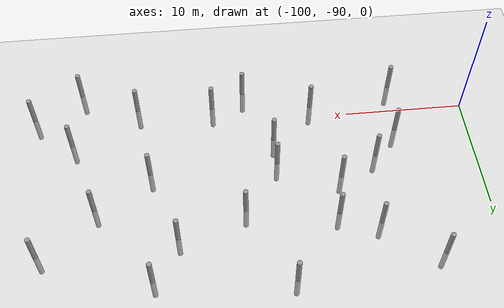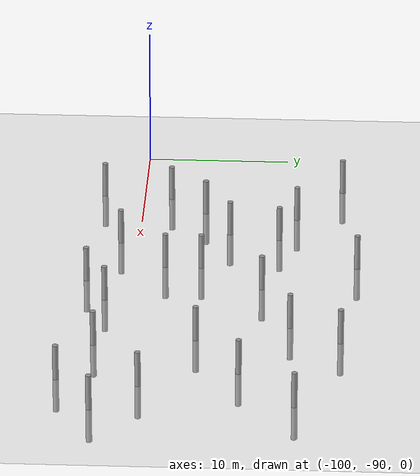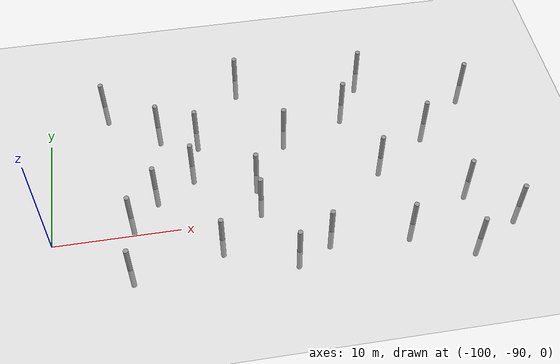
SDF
<sdf version="1.6">
 <world name="default">
  <model name="ground_plane">
   <static>1</static>
   <link name="link">
    <collision name="collision">
     <geometry><plane><normal>0 0 1</normal><size>100 100</size></plane></geometry>
     <surface><friction><ode><mu>100</mu><mu2>50</mu2></ode></friction></surface>
    </collision>
    <visual name="visual">
     <cast_shadows>0</cast_shadows>
     <geometry><plane><normal>0 0 1</normal><size>100 100</size></plane></geometry>
     <material>
      <script><uri>file://media/materials/scripts/gazebo.material</uri><name>Gazebo/Grey</name></script>
     </material>
    </visual>
   </link>
  </model>
  <model name="empty_pillars_11">
   <model name="empty_pillar_clone">
    <link name="link">
     <inertial>
      <mass>1</mass>
      <inertia><ixx>0.145833</ixx><ixy>0</ixy><ixz>0</ixz><iyy>0.145833</iyy><iyz>0</iyz><izz>0.125</izz></inertia>
     </inertial>
     <visual name="visual">
      <geometry><cylinder><radius>0.2</radius><length>5</length></cylinder></geometry>
      <material>
       <script><name>Gazebo/Grey</name><uri>file://media/materials/scripts/gazebo.material</uri></script>
       <shader type="vertex"><normal_map>__default__</normal_map></shader>
       <ambient>0.3 0.3 0.3 1</ambient>
       <diffuse>0.7 0.7 0.7 1</diffuse>
       <specular>0.01 0.01 0.01 1</specular>
       <emissive>0 0 0 1</emissive>
      </material>
     </visual>
     <collision name="collision">
      <geometry><cylinder><radius>0.05</radius><length>5</length></cylinder></geometry>
      <surface>
       <friction>
        <ode><mu>1</mu><mu2>1</mu2><fdir1>0 0 0</fdir1><slip1>0</slip1><slip2>0</slip2></ode>
        <torsional>
         <coefficient>1</coefficient>
         <patch_radius>0</patch_radius>
         <surface_radius>0</surface_radius>
         <use_patch_radius>1</use_patch_radius>
         <ode><slip>0</slip></ode>
        </torsional>
       </friction>
       <bounce><restitution_coefficient>0</restitution_coefficient><threshold>1e+06</threshold></bounce>
       <contact>
        <collide_without_contact>0</collide_without_contact>
        <collide_without_contact_bitmask>1</collide_without_contact_bitmask>
        <collide_bitmask>1</collide_bitmask>
        <ode>
         <soft_cfm>0</soft_cfm>
         <soft_erp>0.2</soft_erp>
         <kp>1e+13</kp>
         <kd>1</kd>
         <max_vel>0.01</max_vel>
         <min_depth>0</min_depth>
        </ode>
        <bullet>
         <split_impulse>1</split_impulse>
         <split_impulse_penetration_threshold>-0.01</split_impulse_penetration_threshold>
         <soft_cfm>0</soft_cfm>
         <soft_erp>0.2</soft_erp>
         <kp>1e+13</kp>
         <kd>1</kd>
        </bullet>
       </contact>
      </surface>
     </collision>
    </link>
    <static>0</static>
    <pose>1.47843 -4.49529 0 0 -0 0</pose>
   </model>
   <model name="empty_pillar_clone_0">
    <link name="link">
     <inertial>
      <mass>1</mass>
      <inertia><ixx>0.145833</ixx><ixy>0</ixy><ixz>0</ixz><iyy>0.145833</iyy><iyz>0</iyz><izz>0.125</izz></inertia>
     </inertial>
     <visual name="visual">
      <geometry><cylinder><radius>0.2</radius><length>5</length></cylinder></geometry>
      <material>
       <script><name>Gazebo/Grey</name><uri>file://media/materials/scripts/gazebo.material</uri></script>
       <shader type="vertex"><normal_map>__default__</normal_map></shader>
       <ambient>0.3 0.3 0.3 1</ambient>
       <diffuse>0.7 0.7 0.7 1</diffuse>
       <specular>0.01 0.01 0.01 1</specular>
       <emissive>0 0 0 1</emissive>
      </material>
     </visual>
     <collision name="collision">
      <geometry><cylinder><radius>0.05</radius><length>5</length></cylinder></geometry>
      <surface>
       <friction>
        <ode><mu>1</mu><mu2>1</mu2><fdir1>0 0 0</fdir1><slip1>0</slip1><slip2>0</slip2></ode>
        <torsional>
         <coefficient>1</coefficient>
         <patch_radius>0</patch_radius>
         <surface_radius>0</surface_radius>
         <use_patch_radius>1</use_patch_radius>
         <ode><slip>0</slip></ode>
        </torsional>
       </friction>
       <bounce><restitution_coefficient>0</restitution_coefficient><threshold>1e+06</threshold></bounce>
       <contact>
        <collide_without_contact>0</collide_without_contact>
        <collide_without_contact_bitmask>1</collide_without_contact_bitmask>
        <collide_bitmask>1</collide_bitmask>
        <ode>
         <soft_cfm>0</soft_cfm>
         <soft_erp>0.2</soft_erp>
         <kp>1e+13</kp>
         <kd>1</kd>
         <max_vel>0.01</max_vel>
         <min_depth>0</min_depth>
        </ode>
        <bullet>
         <split_impulse>1</split_impulse>
         <split_impulse_penetration_threshold>-0.01</split_impulse_penetration_threshold>
         <soft_cfm>0</soft_cfm>
         <soft_erp>0.2</soft_erp>
         <kp>1e+13</kp>
         <kd>1</kd>
        </bullet>
       </contact>
      </surface>
     </collision>
    </link>
    <static>0</static>
    <pose>10.3453 -7.35986 0 0 -0 0</pose>
   </model>
   <model name="empty_pillar_clone_11">
    <link name="link">
     <inertial>
      <mass>1</mass>
      <inertia><ixx>0.145833</ixx><ixy>0</ixy><ixz>0</ixz><iyy>0.145833</iyy><iyz>0</iyz><izz>0.125</izz></inertia>
     </inertial>
     <visual name="visual">
      <geometry><cylinder><radius>0.2</radius><length>5</length></cylinder></geometry>
      <material>
       <script><name>Gazebo/Grey</name><uri>file://media/materials/scripts/gazebo.material</uri></script>
       <shader type="vertex"><normal_map>__default__</normal_map></shader>
       <ambient>0.3 0.3 0.3 1</ambient>
       <diffuse>0.7 0.7 0.7 1</diffuse>
       <specular>0.01 0.01 0.01 1</specular>
       <emissive>0 0 0 1</emissive>
      </material>
     </visual>
     <collision name="collision">
      <geometry><cylinder><radius>0.05</radius><length>5</length></cylinder></geometry>
      <surface>
       <friction>
        <ode><mu>1</mu><mu2>1</mu2><fdir1>0 0 0</fdir1><slip1>0</slip1><slip2>0</slip2></ode>
        <torsional>
         <coefficient>1</coefficient>
         <patch_radius>0</patch_radius>
         <surface_radius>0</surface_radius>
         <use_patch_radius>1</use_patch_radius>
         <ode><slip>0</slip></ode>
        </torsional>
       </friction>
       <bounce><restitution_coefficient>0</restitution_coefficient><threshold>1e+06</threshold></bounce>
       <contact>
        <collide_without_contact>0</collide_without_contact>
        <collide_without_contact_bitmask>1</collide_without_contact_bitmask>
        <collide_bitmask>1</collide_bitmask>
        <ode>
         <soft_cfm>0</soft_cfm>
         <soft_erp>0.2</soft_erp>
         <kp>1e+13</kp>
         <kd>1</kd>
         <max_vel>0.01</max_vel>
         <min_depth>0</min_depth>
        </ode>
        <bullet>
         <split_impulse>1</split_impulse>
         <split_impulse_penetration_threshold>-0.01</split_impulse_penetration_threshold>
         <soft_cfm>0</soft_cfm>
         <soft_erp>0.2</soft_erp>
         <kp>1e+13</kp>
         <kd>1</kd>
        </bullet>
       </contact>
      </surface>
     </collision>
    </link>
    <static>0</static>
    <pose>7.98536 -17.8403 0 0 -0 0</pose>
   </model>
   <model name="empty_pillar_clone_12">
    <link name="link">
     <inertial>
      <mass>1</mass>
      <inertia><ixx>0.145833</ixx><ixy>0</ixy><ixz>0</ixz><iyy>0.145833</iyy><iyz>0</iyz><izz>0.125</izz></inertia>
     </inertial>
     <visual name="visual">
      <geometry><cylinder><radius>0.2</radius><length>5</length></cylinder></geometry>
      <material>
       <script><name>Gazebo/Grey</name><uri>file://media/materials/scripts/gazebo.material</uri></script>
       <shader type="vertex"><normal_map>__default__</normal_map></shader>
       <ambient>0.3 0.3 0.3 1</ambient>
       <diffuse>0.7 0.7 0.7 1</diffuse>
       <specular>0.01 0.01 0.01 1</specular>
       <emissive>0 0 0 1</emissive>
      </material>
     </visual>
     <collision name="collision">
      <geometry><cylinder><radius>0.05</radius><length>5</length></cylinder></geometry>
      <surface>
       <friction>
        <ode><mu>1</mu><mu2>1</mu2><fdir1>0 0 0</fdir1><slip1>0</slip1><slip2>0</slip2></ode>
        <torsional>
         <coefficient>1</coefficient>
         <patch_radius>0</patch_radius>
         <surface_radius>0</surface_radius>
         <use_patch_radius>1</use_patch_radius>
         <ode><slip>0</slip></ode>
        </torsional>
       </friction>
       <bounce><restitution_coefficient>0</restitution_coefficient><threshold>1e+06</threshold></bounce>
       <contact>
        <collide_without_contact>0</collide_without_contact>
        <collide_without_contact_bitmask>1</collide_without_contact_bitmask>
        <collide_bitmask>1</collide_bitmask>
        <ode>
         <soft_cfm>0</soft_cfm>
         <soft_erp>0.2</soft_erp>
         <kp>1e+13</kp>
         <kd>1</kd>
         <max_vel>0.01</max_vel>
         <min_depth>0</min_depth>
        </ode>
        <bullet>
         <split_impulse>1</split_impulse>
         <split_impulse_penetration_threshold>-0.01</split_impulse_penetration_threshold>
         <soft_cfm>0</soft_cfm>
         <soft_erp>0.2</soft_erp>
         <kp>1e+13</kp>
         <kd>1</kd>
        </bullet>
       </contact>
      </surface>
     </collision>
    </link>
    <static>0</static>
    <pose>-4.01464 -20.8403 0 0 -0 0</pose>
   </model>
   <model name="empty_pillar_clone_13">
    <link name="link">
     <inertial>
      <mass>1</mass>
      <inertia><ixx>0.145833</ixx><ixy>0</ixy><ixz>0</ixz><iyy>0.145833</iyy><iyz>0</iyz><izz>0.125</izz></inertia>
     </inertial>
     <visual name="visual">
      <geometry><cylinder><radius>0.2</radius><length>5</length></cylinder></geometry>
      <material>
       <script><name>Gazebo/Grey</name><uri>file://media/materials/scripts/gazebo.material</uri></script>
       <shader type="vertex"><normal_map>__default__</normal_map></shader>
       <ambient>0.3 0.3 0.3 1</ambient>
       <diffuse>0.7 0.7 0.7 1</diffuse>
       <specular>0.01 0.01 0.01 1</specular>
       <emissive>0 0 0 1</emissive>
      </material>
     </visual>
     <collision name="collision">
      <geometry><cylinder><radius>0.05</radius><length>5</length></cylinder></geometry>
      <surface>
       <friction>
        <ode><mu>1</mu><mu2>1</mu2><fdir1>0 0 0</fdir1><slip1>0</slip1><slip2>0</slip2></ode>
        <torsional>
         <coefficient>1</coefficient>
         <patch_radius>0</patch_radius>
         <surface_radius>0</surface_radius>
         <use_patch_radius>1</use_patch_radius>
         <ode><slip>0</slip></ode>
        </torsional>
       </friction>
       <bounce><restitution_coefficient>0</restitution_coefficient><threshold>1e+06</threshold></bounce>
       <contact>
        <collide_without_contact>0</collide_without_contact>
        <collide_without_contact_bitmask>1</collide_without_contact_bitmask>
        <collide_bitmask>1</collide_bitmask>
        <ode>
         <soft_cfm>0</soft_cfm>
         <soft_erp>0.2</soft_erp>
         <kp>1e+13</kp>
         <kd>1</kd>
         <max_vel>0.01</max_vel>
         <min_depth>0</min_depth>
        </ode>
        <bullet>
         <split_impulse>1</split_impulse>
         <split_impulse_penetration_threshold>-0.01</split_impulse_penetration_threshold>
         <soft_cfm>0</soft_cfm>
         <soft_erp>0.2</soft_erp>
         <kp>1e+13</kp>
         <kd>1</kd>
        </bullet>
       </contact>
      </surface>
     </collision>
    </link>
    <static>0</static>
    <pose>-9.01464 -14.4259 0 0 -0 0</pose>
   </model>
   <model name="empty_pillar_clone_15">
    <link name="link">
     <inertial>
      <mass>1</mass>
      <inertia><ixx>0.145833</ixx><ixy>0</ixy><ixz>0</ixz><iyy>0.145833</iyy><iyz>0</iyz><izz>0.125</izz></inertia>
     </inertial>
     <visual name="visual">
      <geometry><cylinder><radius>0.2</radius><length>5</length></cylinder></geometry>
      <material>
       <script><name>Gazebo/Grey</name><uri>file://media/materials/scripts/gazebo.material</uri></script>
       <shader type="vertex"><normal_map>__default__</normal_map></shader>
       <ambient>0.3 0.3 0.3 1</ambient>
       <diffuse>0.7 0.7 0.7 1</diffuse>
       <specular>0.01 0.01 0.01 1</specular>
       <emissive>0 0 0 1</emissive>
      </material>
     </visual>
     <collision name="collision">
      <geometry><cylinder><radius>0.05</radius><length>5</length></cylinder></geometry>
      <surface>
       <friction>
        <ode><mu>1</mu><mu2>1</mu2><fdir1>0 0 0</fdir1><slip1>0</slip1><slip2>0</slip2></ode>
        <torsional>
         <coefficient>1</coefficient>
         <patch_radius>0</patch_radius>
         <surface_radius>0</surface_radius>
         <use_patch_radius>1</use_patch_radius>
         <ode><slip>0</slip></ode>
        </torsional>
       </friction>
       <bounce><restitution_coefficient>0</restitution_coefficient><threshold>1e+06</threshold></bounce>
       <contact>
        <collide_without_contact>0</collide_without_contact>
        <collide_without_contact_bitmask>1</collide_without_contact_bitmask>
        <collide_bitmask>1</collide_bitmask>
        <ode>
         <soft_cfm>0</soft_cfm>
         <soft_erp>0.2</soft_erp>
         <kp>1e+13</kp>
         <kd>1</kd>
         <max_vel>0.01</max_vel>
         <min_depth>0</min_depth>
        </ode>
        <bullet>
         <split_impulse>1</split_impulse>
         <split_impulse_penetration_threshold>-0.01</split_impulse_penetration_threshold>
         <soft_cfm>0</soft_cfm>
         <soft_erp>0.2</soft_erp>
         <kp>1e+13</kp>
         <kd>1</kd>
        </bullet>
       </contact>
      </surface>
     </collision>
    </link>
    <static>0</static>
    <pose>-9.37193 -3.58732 0 0 -0 0</pose>
   </model>
   <model name="empty_pillar_clone_3">
    <link name="link">
     <inertial>
      <mass>1</mass>
      <inertia><ixx>0.145833</ixx><ixy>0</ixy><ixz>0</ixz><iyy>0.145833</iyy><iyz>0</iyz><izz>0.125</izz></inertia>
     </inertial>
     <visual name="visual">
      <geometry><cylinder><radius>0.2</radius><length>5</length></cylinder></geometry>
      <material>
       <script><name>Gazebo/Grey</name><uri>file://media/materials/scripts/gazebo.material</uri></script>
       <shader type="vertex"><normal_map>__default__</normal_map></shader>
       <ambient>0.3 0.3 0.3 1</ambient>
       <diffuse>0.7 0.7 0.7 1</diffuse>
       <specular>0.01 0.01 0.01 1</specular>
       <emissive>0 0 0 1</emissive>
      </material>
     </visual>
     <collision name="collision">
      <geometry><cylinder><radius>0.05</radius><length>5</length></cylinder></geometry>
      <surface>
       <friction>
        <ode><mu>1</mu><mu2>1</mu2><fdir1>0 0 0</fdir1><slip1>0</slip1><slip2>0</slip2></ode>
        <torsional>
         <coefficient>1</coefficient>
         <patch_radius>0</patch_radius>
         <surface_radius>0</surface_radius>
         <use_patch_radius>1</use_patch_radius>
         <ode><slip>0</slip></ode>
        </torsional>
       </friction>
       <bounce><restitution_coefficient>0</restitution_coefficient><threshold>1e+06</threshold></bounce>
       <contact>
        <collide_without_contact>0</collide_without_contact>
        <collide_without_contact_bitmask>1</collide_without_contact_bitmask>
        <collide_bitmask>1</collide_bitmask>
        <ode>
         <soft_cfm>0</soft_cfm>
         <soft_erp>0.2</soft_erp>
         <kp>1e+13</kp>
         <kd>1</kd>
         <max_vel>0.01</max_vel>
         <min_depth>0</min_depth>
        </ode>
        <bullet>
         <split_impulse>1</split_impulse>
         <split_impulse_penetration_threshold>-0.01</split_impulse_penetration_threshold>
         <soft_cfm>0</soft_cfm>
         <soft_erp>0.2</soft_erp>
         <kp>1e+13</kp>
         <kd>1</kd>
        </bullet>
       </contact>
      </surface>
     </collision>
    </link>
    <static>0</static>
    <pose>5.99316 -11.2211 0 0 -0 0</pose>
   </model>
   <model name="empty_pillar_clone_35">
    <link name="link">
     <inertial>
      <mass>1</mass>
      <inertia><ixx>0.145833</ixx><ixy>0</ixy><ixz>0</ixz><iyy>0.145833</iyy><iyz>0</iyz><izz>0.125</izz></inertia>
     </inertial>
     <visual name="visual">
      <geometry><cylinder><radius>0.2</radius><length>5</length></cylinder></geometry>
      <material>
       <script><name>Gazebo/Grey</name><uri>file://media/materials/scripts/gazebo.material</uri></script>
       <shader type="vertex"><normal_map>__default__</normal_map></shader>
       <ambient>0.3 0.3 0.3 1</ambient>
       <diffuse>0.7 0.7 0.7 1</diffuse>
       <specular>0.01 0.01 0.01 1</specular>
       <emissive>0 0 0 1</emissive>
      </material>
     </visual>
     <collision name="collision">
      <geometry><cylinder><radius>0.05</radius><length>5</length></cylinder></geometry>
      <surface>
       <friction>
        <ode><mu>1</mu><mu2>1</mu2><fdir1>0 0 0</fdir1><slip1>0</slip1><slip2>0</slip2></ode>
        <torsional>
         <coefficient>1</coefficient>
         <patch_radius>0</patch_radius>
         <surface_radius>0</surface_radius>
         <use_patch_radius>1</use_patch_radius>
         <ode><slip>0</slip></ode>
        </torsional>
       </friction>
       <bounce><restitution_coefficient>0</restitution_coefficient><threshold>1e+06</threshold></bounce>
       <contact>
        <collide_without_contact>0</collide_without_contact>
        <collide_without_contact_bitmask>1</collide_without_contact_bitmask>
        <collide_bitmask>1</collide_bitmask>
        <ode>
         <soft_cfm>0</soft_cfm>
         <soft_erp>0.2</soft_erp>
         <kp>1e+13</kp>
         <kd>1</kd>
         <max_vel>0.01</max_vel>
         <min_depth>0</min_depth>
        </ode>
        <bullet>
         <split_impulse>1</split_impulse>
         <split_impulse_penetration_threshold>-0.01</split_impulse_penetration_threshold>
         <soft_cfm>0</soft_cfm>
         <soft_erp>0.2</soft_erp>
         <kp>1e+13</kp>
         <kd>1</kd>
        </bullet>
       </contact>
      </surface>
     </collision>
    </link>
    <static>0</static>
    <pose>-19.4431 -17.0281 0 0 -0 0</pose>
   </model>
   <model name="empty_pillar_clone_36">
    <link name="link">
     <inertial>
      <mass>1</mass>
      <inertia><ixx>0.145833</ixx><ixy>0</ixy><ixz>0</ixz><iyy>0.145833</iyy><iyz>0</iyz><izz>0.125</izz></inertia>
     </inertial>
     <visual name="visual">
      <geometry><cylinder><radius>0.2</radius><length>5</length></cylinder></geometry>
      <material>
       <script><name>Gazebo/Grey</name><uri>file://media/materials/scripts/gazebo.material</uri></script>
       <shader type="vertex"><normal_map>__default__</normal_map></shader>
       <ambient>0.3 0.3 0.3 1</ambient>
       <diffuse>0.7 0.7 0.7 1</diffuse>
       <specular>0.01 0.01 0.01 1</specular>
       <emissive>0 0 0 1</emissive>
      </material>
     </visual>
     <collision name="collision">
      <geometry><cylinder><radius>0.05</radius><length>5</length></cylinder></geometry>
      <surface>
       <friction>
        <ode><mu>1</mu><mu2>1</mu2><fdir1>0 0 0</fdir1><slip1>0</slip1><slip2>0</slip2></ode>
        <torsional>
         <coefficient>1</coefficient>
         <patch_radius>0</patch_radius>
         <surface_radius>0</surface_radius>
         <use_patch_radius>1</use_patch_radius>
         <ode><slip>0</slip></ode>
        </torsional>
       </friction>
       <bounce><restitution_coefficient>0</restitution_coefficient><threshold>1e+06</threshold></bounce>
       <contact>
        <collide_without_contact>0</collide_without_contact>
        <collide_without_contact_bitmask>1</collide_without_contact_bitmask>
        <collide_bitmask>1</collide_bitmask>
        <ode>
         <soft_cfm>0</soft_cfm>
         <soft_erp>0.2</soft_erp>
         <kp>1e+13</kp>
         <kd>1</kd>
         <max_vel>0.01</max_vel>
         <min_depth>0</min_depth>
        </ode>
        <bullet>
         <split_impulse>1</split_impulse>
         <split_impulse_penetration_threshold>-0.01</split_impulse_penetration_threshold>
         <soft_cfm>0</soft_cfm>
         <soft_erp>0.2</soft_erp>
         <kp>1e+13</kp>
         <kd>1</kd>
        </bullet>
       </contact>
      </surface>
     </collision>
    </link>
    <static>0</static>
    <pose>-21.0146 -4.84034 0 0 -0 0</pose>
   </model>
   <model name="empty_pillar_clone_37">
    <link name="link">
     <inertial>
      <mass>1</mass>
      <inertia><ixx>0.145833</ixx><ixy>0</ixy><ixz>0</ixz><iyy>0.145833</iyy><iyz>0</iyz><izz>0.125</izz></inertia>
     </inertial>
     <visual name="visual">
      <geometry><cylinder><radius>0.2</radius><length>5</length></cylinder></geometry>
      <material>
       <script><name>Gazebo/Grey</name><uri>file://media/materials/scripts/gazebo.material</uri></script>
       <shader type="vertex"><normal_map>__default__</normal_map></shader>
       <ambient>0.3 0.3 0.3 1</ambient>
       <diffuse>0.7 0.7 0.7 1</diffuse>
       <specular>0.01 0.01 0.01 1</specular>
       <emissive>0 0 0 1</emissive>
      </material>
     </visual>
     <collision name="collision">
      <geometry><cylinder><radius>0.05</radius><length>5</length></cylinder></geometry>
      <surface>
       <friction>
        <ode><mu>1</mu><mu2>1</mu2><fdir1>0 0 0</fdir1><slip1>0</slip1><slip2>0</slip2></ode>
        <torsional>
         <coefficient>1</coefficient>
         <patch_radius>0</patch_radius>
         <surface_radius>0</surface_radius>
         <use_patch_radius>1</use_patch_radius>
         <ode><slip>0</slip></ode>
        </torsional>
       </friction>
       <bounce><restitution_coefficient>0</restitution_coefficient><threshold>1e+06</threshold></bounce>
       <contact>
        <collide_without_contact>0</collide_without_contact>
        <collide_without_contact_bitmask>1</collide_without_contact_bitmask>
        <collide_bitmask>1</collide_bitmask>
        <ode>
         <soft_cfm>0</soft_cfm>
         <soft_erp>0.2</soft_erp>
         <kp>1e+13</kp>
         <kd>1</kd>
         <max_vel>0.01</max_vel>
         <min_depth>0</min_depth>
        </ode>
        <bullet>
         <split_impulse>1</split_impulse>
         <split_impulse_penetration_threshold>-0.01</split_impulse_penetration_threshold>
         <soft_cfm>0</soft_cfm>
         <soft_erp>0.2</soft_erp>
         <kp>1e+13</kp>
         <kd>1</kd>
        </bullet>
       </contact>
      </surface>
     </collision>
    </link>
    <static>0</static>
    <pose>-16.6035 -7.98282 0 0 -0 0</pose>
   </model>
   <model name="empty_pillar_clone_39">
    <link name="link">
     <inertial>
      <mass>1</mass>
      <inertia><ixx>0.145833</ixx><ixy>0</ixy><ixz>0</ixz><iyy>0.145833</iyy><iyz>0</iyz><izz>0.125</izz></inertia>
     </inertial>
     <visual name="visual">
      <geometry><cylinder><radius>0.2</radius><length>5</length></cylinder></geometry>
      <material>
       <script><name>Gazebo/Grey</name><uri>file://media/materials/scripts/gazebo.material</uri></script>
       <shader type="vertex"><normal_map>__default__</normal_map></shader>
       <ambient>0.3 0.3 0.3 1</ambient>
       <diffuse>0.7 0.7 0.7 1</diffuse>
       <specular>0.01 0.01 0.01 1</specular>
       <emissive>0 0 0 1</emissive>
      </material>
     </visual>
     <collision name="collision">
      <geometry><cylinder><radius>0.05</radius><length>5</length></cylinder></geometry>
      <surface>
       <friction>
        <ode><mu>1</mu><mu2>1</mu2><fdir1>0 0 0</fdir1><slip1>0</slip1><slip2>0</slip2></ode>
        <torsional>
         <coefficient>1</coefficient>
         <patch_radius>0</patch_radius>
         <surface_radius>0</surface_radius>
         <use_patch_radius>1</use_patch_radius>
         <ode><slip>0</slip></ode>
        </torsional>
       </friction>
       <bounce><restitution_coefficient>0</restitution_coefficient><threshold>1e+06</threshold></bounce>
       <contact>
        <collide_without_contact>0</collide_without_contact>
        <collide_without_contact_bitmask>1</collide_without_contact_bitmask>
        <collide_bitmask>1</collide_bitmask>
        <ode>
         <soft_cfm>0</soft_cfm>
         <soft_erp>0.2</soft_erp>
         <kp>1e+13</kp>
         <kd>1</kd>
         <max_vel>0.01</max_vel>
         <min_depth>0</min_depth>
        </ode>
        <bullet>
         <split_impulse>1</split_impulse>
         <split_impulse_penetration_threshold>-0.01</split_impulse_penetration_threshold>
         <soft_cfm>0</soft_cfm>
         <soft_erp>0.2</soft_erp>
         <kp>1e+13</kp>
         <kd>1</kd>
        </bullet>
       </contact>
      </surface>
     </collision>
    </link>
    <static>0</static>
    <pose>-13.4361 -9.12638 0 0 -0 0</pose>
   </model>
   <model name="empty_pillar_clone_4">
    <link name="link">
     <inertial>
      <mass>1</mass>
      <inertia><ixx>0.145833</ixx><ixy>0</ixy><ixz>0</ixz><iyy>0.145833</iyy><iyz>0</iyz><izz>0.125</izz></inertia>
     </inertial>
     <visual name="visual">
      <geometry><cylinder><radius>0.2</radius><length>5</length></cylinder></geometry>
      <material>
       <script><name>Gazebo/Grey</name><uri>file://media/materials/scripts/gazebo.material</uri></script>
       <shader type="vertex"><normal_map>__default__</normal_map></shader>
       <ambient>0.3 0.3 0.3 1</ambient>
       <diffuse>0.7 0.7 0.7 1</diffuse>
       <specular>0.01 0.01 0.01 1</specular>
       <emissive>0 0 0 1</emissive>
      </material>
     </visual>
     <collision name="collision">
      <geometry><cylinder><radius>0.05</radius><length>5</length></cylinder></geometry>
      <surface>
       <friction>
        <ode><mu>1</mu><mu2>1</mu2><fdir1>0 0 0</fdir1><slip1>0</slip1><slip2>0</slip2></ode>
        <torsional>
         <coefficient>1</coefficient>
         <patch_radius>0</patch_radius>
         <surface_radius>0</surface_radius>
         <use_patch_radius>1</use_patch_radius>
         <ode><slip>0</slip></ode>
        </torsional>
       </friction>
       <bounce><restitution_coefficient>0</restitution_coefficient><threshold>1e+06</threshold></bounce>
       <contact>
        <collide_without_contact>0</collide_without_contact>
        <collide_without_contact_bitmask>1</collide_without_contact_bitmask>
        <collide_bitmask>1</collide_bitmask>
        <ode>
         <soft_cfm>0</soft_cfm>
         <soft_erp>0.2</soft_erp>
         <kp>1e+13</kp>
         <kd>1</kd>
         <max_vel>0.01</max_vel>
         <min_depth>0</min_depth>
        </ode>
        <bullet>
         <split_impulse>1</split_impulse>
         <split_impulse_penetration_threshold>-0.01</split_impulse_penetration_threshold>
         <soft_cfm>0</soft_cfm>
         <soft_erp>0.2</soft_erp>
         <kp>1e+13</kp>
         <kd>1</kd>
        </bullet>
       </contact>
      </surface>
     </collision>
    </link>
    <static>0</static>
    <pose>1.48428 -14.2998 0 0 -0 0</pose>
   </model>
   <model name="empty_pillar_clone_40">
    <link name="link">
     <inertial>
      <mass>1</mass>
      <inertia><ixx>0.145833</ixx><ixy>0</ixy><ixz>0</ixz><iyy>0.145833</iyy><iyz>0</iyz><izz>0.125</izz></inertia>
     </inertial>
     <visual name="visual">
      <geometry><cylinder><radius>0.2</radius><length>5</length></cylinder></geometry>
      <material>
       <script><name>Gazebo/Grey</name><uri>file://media/materials/scripts/gazebo.material</uri></script>
       <shader type="vertex"><normal_map>__default__</normal_map></shader>
       <ambient>0.3 0.3 0.3 1</ambient>
       <diffuse>0.7 0.7 0.7 1</diffuse>
       <specular>0.01 0.01 0.01 1</specular>
       <emissive>0 0 0 1</emissive>
      </material>
     </visual>
     <collision name="collision">
      <geometry><cylinder><radius>0.05</radius><length>5</length></cylinder></geometry>
      <surface>
       <friction>
        <ode><mu>1</mu><mu2>1</mu2><fdir1>0 0 0</fdir1><slip1>0</slip1><slip2>0</slip2></ode>
        <torsional>
         <coefficient>1</coefficient>
         <patch_radius>0</patch_radius>
         <surface_radius>0</surface_radius>
         <use_patch_radius>1</use_patch_radius>
         <ode><slip>0</slip></ode>
        </torsional>
       </friction>
       <bounce><restitution_coefficient>0</restitution_coefficient><threshold>1e+06</threshold></bounce>
       <contact>
        <collide_without_contact>0</collide_without_contact>
        <collide_without_contact_bitmask>1</collide_without_contact_bitmask>
        <collide_bitmask>1</collide_bitmask>
        <ode>
         <soft_cfm>0</soft_cfm>
         <soft_erp>0.2</soft_erp>
         <kp>1e+13</kp>
         <kd>1</kd>
         <max_vel>0.01</max_vel>
         <min_depth>0</min_depth>
        </ode>
        <bullet>
         <split_impulse>1</split_impulse>
         <split_impulse_penetration_threshold>-0.01</split_impulse_penetration_threshold>
         <soft_cfm>0</soft_cfm>
         <soft_erp>0.2</soft_erp>
         <kp>1e+13</kp>
         <kd>1</kd>
        </bullet>
       </contact>
      </surface>
     </collision>
    </link>
    <static>0</static>
    <pose>-17.318 -14.4851 0 0 -0 0</pose>
   </model>
   <model name="empty_pillar_clone_41">
    <link name="link">
     <inertial>
      <mass>1</mass>
      <inertia><ixx>0.145833</ixx><ixy>0</ixy><ixz>0</ixz><iyy>0.145833</iyy><iyz>0</iyz><izz>0.125</izz></inertia>
     </inertial>
     <visual name="visual">
      <geometry><cylinder><radius>0.2</radius><length>5</length></cylinder></geometry>
      <material>
       <script><name>Gazebo/Grey</name><uri>file://media/materials/scripts/gazebo.material</uri></script>
       <shader type="vertex"><normal_map>__default__</normal_map></shader>
       <ambient>0.3 0.3 0.3 1</ambient>
       <diffuse>0.7 0.7 0.7 1</diffuse>
       <specular>0.01 0.01 0.01 1</specular>
       <emissive>0 0 0 1</emissive>
      </material>
     </visual>
     <collision name="collision">
      <geometry><cylinder><radius>0.05</radius><length>5</length></cylinder></geometry>
      <surface>
       <friction>
        <ode><mu>1</mu><mu2>1</mu2><fdir1>0 0 0</fdir1><slip1>0</slip1><slip2>0</slip2></ode>
        <torsional>
         <coefficient>1</coefficient>
         <patch_radius>0</patch_radius>
         <surface_radius>0</surface_radius>
         <use_patch_radius>1</use_patch_radius>
         <ode><slip>0</slip></ode>
        </torsional>
       </friction>
       <bounce><restitution_coefficient>0</restitution_coefficient><threshold>1e+06</threshold></bounce>
       <contact>
        <collide_without_contact>0</collide_without_contact>
        <collide_without_contact_bitmask>1</collide_without_contact_bitmask>
        <collide_bitmask>1</collide_bitmask>
        <ode>
         <soft_cfm>0</soft_cfm>
         <soft_erp>0.2</soft_erp>
         <kp>1e+13</kp>
         <kd>1</kd>
         <max_vel>0.01</max_vel>
         <min_depth>0</min_depth>
        </ode>
        <bullet>
         <split_impulse>1</split_impulse>
         <split_impulse_penetration_threshold>-0.01</split_impulse_penetration_threshold>
         <soft_cfm>0</soft_cfm>
         <soft_erp>0.2</soft_erp>
         <kp>1e+13</kp>
         <kd>1</kd>
        </bullet>
       </contact>
      </surface>
     </collision>
    </link>
    <static>0</static>
    <pose>-14.1448 -12.6326 0 0 -0 0</pose>
   </model>
   <model name="empty_pillar_clone_42">
    <link name="link">
     <inertial>
      <mass>1</mass>
      <inertia><ixx>0.145833</ixx><ixy>0</ixy><ixz>0</ixz><iyy>0.145833</iyy><iyz>0</iyz><izz>0.125</izz></inertia>
     </inertial>
     <visual name="visual">
      <geometry><cylinder><radius>0.2</radius><length>5</length></cylinder></geometry>
      <material>
       <script><name>Gazebo/Grey</name><uri>file://media/materials/scripts/gazebo.material</uri></script>
       <shader type="vertex"><normal_map>__default__</normal_map></shader>
       <ambient>0.3 0.3 0.3 1</ambient>
       <diffuse>0.7 0.7 0.7 1</diffuse>
       <specular>0.01 0.01 0.01 1</specular>
       <emissive>0 0 0 1</emissive>
      </material>
     </visual>
     <collision name="collision">
      <geometry><cylinder><radius>0.05</radius><length>5</length></cylinder></geometry>
      <surface>
       <friction>
        <ode><mu>1</mu><mu2>1</mu2><fdir1>0 0 0</fdir1><slip1>0</slip1><slip2>0</slip2></ode>
        <torsional>
         <coefficient>1</coefficient>
         <patch_radius>0</patch_radius>
         <surface_radius>0</surface_radius>
         <use_patch_radius>1</use_patch_radius>
         <ode><slip>0</slip></ode>
        </torsional>
       </friction>
       <bounce><restitution_coefficient>0</restitution_coefficient><threshold>1e+06</threshold></bounce>
       <contact>
        <collide_without_contact>0</collide_without_contact>
        <collide_without_contact_bitmask>1</collide_without_contact_bitmask>
        <collide_bitmask>1</collide_bitmask>
        <ode>
         <soft_cfm>0</soft_cfm>
         <soft_erp>0.2</soft_erp>
         <kp>1e+13</kp>
         <kd>1</kd>
         <max_vel>0.01</max_vel>
         <min_depth>0</min_depth>
        </ode>
        <bullet>
         <split_impulse>1</split_impulse>
         <split_impulse_penetration_threshold>-0.01</split_impulse_penetration_threshold>
         <soft_cfm>0</soft_cfm>
         <soft_erp>0.2</soft_erp>
         <kp>1e+13</kp>
         <kd>1</kd>
        </bullet>
       </contact>
      </surface>
     </collision>
    </link>
    <static>0</static>
    <pose>-12.5409 -20.2416 0 0 -0 0</pose>
   </model>
   <model name="empty_pillar_clone_43">
    <link name="link">
     <inertial>
      <mass>1</mass>
      <inertia><ixx>0.145833</ixx><ixy>0</ixy><ixz>0</ixz><iyy>0.145833</iyy><iyz>0</iyz><izz>0.125</izz></inertia>
     </inertial>
     <visual name="visual">
      <geometry><cylinder><radius>0.2</radius><length>5</length></cylinder></geometry>
      <material>
       <script><name>Gazebo/Grey</name><uri>file://media/materials/scripts/gazebo.material</uri></script>
       <shader type="vertex"><normal_map>__default__</normal_map></shader>
       <ambient>0.3 0.3 0.3 1</ambient>
       <diffuse>0.7 0.7 0.7 1</diffuse>
       <specular>0.01 0.01 0.01 1</specular>
       <emissive>0 0 0 1</emissive>
      </material>
     </visual>
     <collision name="collision">
      <geometry><cylinder><radius>0.05</radius><length>5</length></cylinder></geometry>
      <surface>
       <friction>
        <ode><mu>1</mu><mu2>1</mu2><fdir1>0 0 0</fdir1><slip1>0</slip1><slip2>0</slip2></ode>
        <torsional>
         <coefficient>1</coefficient>
         <patch_radius>0</patch_radius>
         <surface_radius>0</surface_radius>
         <use_patch_radius>1</use_patch_radius>
         <ode><slip>0</slip></ode>
        </torsional>
       </friction>
       <bounce><restitution_coefficient>0</restitution_coefficient><threshold>1e+06</threshold></bounce>
       <contact>
        <collide_without_contact>0</collide_without_contact>
        <collide_without_contact_bitmask>1</collide_without_contact_bitmask>
        <collide_bitmask>1</collide_bitmask>
        <ode>
         <soft_cfm>0</soft_cfm>
         <soft_erp>0.2</soft_erp>
         <kp>1e+13</kp>
         <kd>1</kd>
         <max_vel>0.01</max_vel>
         <min_depth>0</min_depth>
        </ode>
        <bullet>
         <split_impulse>1</split_impulse>
         <split_impulse_penetration_threshold>-0.01</split_impulse_penetration_threshold>
         <soft_cfm>0</soft_cfm>
         <soft_erp>0.2</soft_erp>
         <kp>1e+13</kp>
         <kd>1</kd>
        </bullet>
       </contact>
      </surface>
     </collision>
    </link>
    <static>0</static>
    <pose>-19.7613 -21.8307 0 0 -0 0</pose>
   </model>
   <model name="empty_pillar_clone_44">
    <link name="link">
     <inertial>
      <mass>1</mass>
      <inertia><ixx>0.145833</ixx><ixy>0</ixy><ixz>0</ixz><iyy>0.145833</iyy><iyz>0</iyz><izz>0.125</izz></inertia>
     </inertial>
     <visual name="visual">
      <geometry><cylinder><radius>0.2</radius><length>5</length></cylinder></geometry>
      <material>
       <script><name>Gazebo/Grey</name><uri>file://media/materials/scripts/gazebo.material</uri></script>
       <shader type="vertex"><normal_map>__default__</normal_map></shader>
       <ambient>0.3 0.3 0.3 1</ambient>
       <diffuse>0.7 0.7 0.7 1</diffuse>
       <specular>0.01 0.01 0.01 1</specular>
       <emissive>0 0 0 1</emissive>
      </material>
     </visual>
     <collision name="collision">
      <geometry><cylinder><radius>0.05</radius><length>5</length></cylinder></geometry>
      <surface>
       <friction>
        <ode><mu>1</mu><mu2>1</mu2><fdir1>0 0 0</fdir1><slip1>0</slip1><slip2>0</slip2></ode>
        <torsional>
         <coefficient>1</coefficient>
         <patch_radius>0</patch_radius>
         <surface_radius>0</surface_radius>
         <use_patch_radius>1</use_patch_radius>
         <ode><slip>0</slip></ode>
        </torsional>
       </friction>
       <bounce><restitution_coefficient>0</restitution_coefficient><threshold>1e+06</threshold></bounce>
       <contact>
        <collide_without_contact>0</collide_without_contact>
        <collide_without_contact_bitmask>1</collide_without_contact_bitmask>
        <collide_bitmask>1</collide_bitmask>
        <ode>
         <soft_cfm>0</soft_cfm>
         <soft_erp>0.2</soft_erp>
         <kp>1e+13</kp>
         <kd>1</kd>
         <max_vel>0.01</max_vel>
         <min_depth>0</min_depth>
        </ode>
        <bullet>
         <split_impulse>1</split_impulse>
         <split_impulse_penetration_threshold>-0.01</split_impulse_penetration_threshold>
         <soft_cfm>0</soft_cfm>
         <soft_erp>0.2</soft_erp>
         <kp>1e+13</kp>
         <kd>1</kd>
        </bullet>
       </contact>
      </surface>
     </collision>
    </link>
    <static>0</static>
    <pose>-6.78285 -22.2729 0 0 -0 0</pose>
   </model>
   <model name="empty_pillar_clone_45">
    <link name="link">
     <inertial>
      <mass>1</mass>
      <inertia><ixx>0.145833</ixx><ixy>0</ixy><ixz>0</ixz><iyy>0.145833</iyy><iyz>0</iyz><izz>0.125</izz></inertia>
     </inertial>
     <visual name="visual">
      <geometry><cylinder><radius>0.2</radius><length>5</length></cylinder></geometry>
      <material>
       <script><name>Gazebo/Grey</name><uri>file://media/materials/scripts/gazebo.material</uri></script>
       <shader type="vertex"><normal_map>__default__</normal_map></shader>
       <ambient>0.3 0.3 0.3 1</ambient>
       <diffuse>0.7 0.7 0.7 1</diffuse>
       <specular>0.01 0.01 0.01 1</specular>
       <emissive>0 0 0 1</emissive>
      </material>
     </visual>
     <collision name="collision">
      <geometry><cylinder><radius>0.05</radius><length>5</length></cylinder></geometry>
      <surface>
       <friction>
        <ode><mu>1</mu><mu2>1</mu2><fdir1>0 0 0</fdir1><slip1>0</slip1><slip2>0</slip2></ode>
        <torsional>
         <coefficient>1</coefficient>
         <patch_radius>0</patch_radius>
         <surface_radius>0</surface_radius>
         <use_patch_radius>1</use_patch_radius>
         <ode><slip>0</slip></ode>
        </torsional>
       </friction>
       <bounce><restitution_coefficient>0</restitution_coefficient><threshold>1e+06</threshold></bounce>
       <contact>
        <collide_without_contact>0</collide_without_contact>
        <collide_without_contact_bitmask>1</collide_without_contact_bitmask>
        <collide_bitmask>1</collide_bitmask>
        <ode>
         <soft_cfm>0</soft_cfm>
         <soft_erp>0.2</soft_erp>
         <kp>1e+13</kp>
         <kd>1</kd>
         <max_vel>0.01</max_vel>
         <min_depth>0</min_depth>
        </ode>
        <bullet>
         <split_impulse>1</split_impulse>
         <split_impulse_penetration_threshold>-0.01</split_impulse_penetration_threshold>
         <soft_cfm>0</soft_cfm>
         <soft_erp>0.2</soft_erp>
         <kp>1e+13</kp>
         <kd>1</kd>
        </bullet>
       </contact>
      </surface>
     </collision>
    </link>
    <static>0</static>
    <pose>-9.01076 -16.9307 0 0 -0 0</pose>
   </model>
   <model name="empty_pillar_clone_46">
    <link name="link">
     <inertial>
      <mass>1</mass>
      <inertia><ixx>0.145833</ixx><ixy>0</ixy><ixz>0</ixz><iyy>0.145833</iyy><iyz>0</iyz><izz>0.125</izz></inertia>
     </inertial>
     <visual name="visual">
      <geometry><cylinder><radius>0.2</radius><length>5</length></cylinder></geometry>
      <material>
       <script><name>Gazebo/Grey</name><uri>file://media/materials/scripts/gazebo.material</uri></script>
       <shader type="vertex"><normal_map>__default__</normal_map></shader>
       <ambient>0.3 0.3 0.3 1</ambient>
       <diffuse>0.7 0.7 0.7 1</diffuse>
       <specular>0.01 0.01 0.01 1</specular>
       <emissive>0 0 0 1</emissive>
      </material>
     </visual>
     <collision name="collision">
      <geometry><cylinder><radius>0.05</radius><length>5</length></cylinder></geometry>
      <surface>
       <friction>
        <ode><mu>1</mu><mu2>1</mu2><fdir1>0 0 0</fdir1><slip1>0</slip1><slip2>0</slip2></ode>
        <torsional>
         <coefficient>1</coefficient>
         <patch_radius>0</patch_radius>
         <surface_radius>0</surface_radius>
         <use_patch_radius>1</use_patch_radius>
         <ode><slip>0</slip></ode>
        </torsional>
       </friction>
       <bounce><restitution_coefficient>0</restitution_coefficient><threshold>1e+06</threshold></bounce>
       <contact>
        <collide_without_contact>0</collide_without_contact>
        <collide_without_contact_bitmask>1</collide_without_contact_bitmask>
        <collide_bitmask>1</collide_bitmask>
        <ode>
         <soft_cfm>0</soft_cfm>
         <soft_erp>0.2</soft_erp>
         <kp>1e+13</kp>
         <kd>1</kd>
         <max_vel>0.01</max_vel>
         <min_depth>0</min_depth>
        </ode>
        <bullet>
         <split_impulse>1</split_impulse>
         <split_impulse_penetration_threshold>-0.01</split_impulse_penetration_threshold>
         <soft_cfm>0</soft_cfm>
         <soft_erp>0.2</soft_erp>
         <kp>1e+13</kp>
         <kd>1</kd>
        </bullet>
       </contact>
      </surface>
     </collision>
    </link>
    <static>0</static>
    <pose>2.45033 -21.185 0 0 -0 0</pose>
   </model>
   <model name="empty_pillar_clone_47">
    <link name="link">
     <inertial>
      <mass>1</mass>
      <inertia><ixx>0.145833</ixx><ixy>0</ixy><ixz>0</ixz><iyy>0.145833</iyy><iyz>0</iyz><izz>0.125</izz></inertia>
     </inertial>
     <visual name="visual">
      <geometry><cylinder><radius>0.2</radius><length>5</length></cylinder></geometry>
      <material>
       <script><name>Gazebo/Grey</name><uri>file://media/materials/scripts/gazebo.material</uri></script>
       <shader type="vertex"><normal_map>__default__</normal_map></shader>
       <ambient>0.3 0.3 0.3 1</ambient>
       <diffuse>0.7 0.7 0.7 1</diffuse>
       <specular>0.01 0.01 0.01 1</specular>
       <emissive>0 0 0 1</emissive>
      </material>
     </visual>
     <collision name="collision">
      <geometry><cylinder><radius>0.05</radius><length>5</length></cylinder></geometry>
      <surface>
       <friction>
        <ode><mu>1</mu><mu2>1</mu2><fdir1>0 0 0</fdir1><slip1>0</slip1><slip2>0</slip2></ode>
        <torsional>
         <coefficient>1</coefficient>
         <patch_radius>0</patch_radius>
         <surface_radius>0</surface_radius>
         <use_patch_radius>1</use_patch_radius>
         <ode><slip>0</slip></ode>
        </torsional>
       </friction>
       <bounce><restitution_coefficient>0</restitution_coefficient><threshold>1e+06</threshold></bounce>
       <contact>
        <collide_without_contact>0</collide_without_contact>
        <collide_without_contact_bitmask>1</collide_without_contact_bitmask>
        <collide_bitmask>1</collide_bitmask>
        <ode>
         <soft_cfm>0</soft_cfm>
         <soft_erp>0.2</soft_erp>
         <kp>1e+13</kp>
         <kd>1</kd>
         <max_vel>0.01</max_vel>
         <min_depth>0</min_depth>
        </ode>
        <bullet>
         <split_impulse>1</split_impulse>
         <split_impulse_penetration_threshold>-0.01</split_impulse_penetration_threshold>
         <soft_cfm>0</soft_cfm>
         <soft_erp>0.2</soft_erp>
         <kp>1e+13</kp>
         <kd>1</kd>
        </bullet>
       </contact>
      </surface>
     </collision>
    </link>
    <static>0</static>
    <pose>-0.569433 -7.97346 0 0 -0 0</pose>
   </model>
   <model name="empty_pillar_clone_5">
    <link name="link">
     <inertial>
      <mass>1</mass>
      <inertia><ixx>0.145833</ixx><ixy>0</ixy><ixz>0</ixz><iyy>0.145833</iyy><iyz>0</iyz><izz>0.125</izz></inertia>
     </inertial>
     <visual name="visual">
      <geometry><cylinder><radius>0.2</radius><length>5</length></cylinder></geometry>
      <material>
       <script><name>Gazebo/Grey</name><uri>file://media/materials/scripts/gazebo.material</uri></script>
       <shader type="vertex"><normal_map>__default__</normal_map></shader>
       <ambient>0.3 0.3 0.3 1</ambient>
       <diffuse>0.7 0.7 0.7 1</diffuse>
       <specular>0.01 0.01 0.01 1</specular>
       <emissive>0 0 0 1</emissive>
      </material>
     </visual>
     <collision name="collision">
      <geometry><cylinder><radius>0.05</radius><length>5</length></cylinder></geometry>
      <surface>
       <friction>
        <ode><mu>1</mu><mu2>1</mu2><fdir1>0 0 0</fdir1><slip1>0</slip1><slip2>0</slip2></ode>
        <torsional>
         <coefficient>1</coefficient>
         <patch_radius>0</patch_radius>
         <surface_radius>0</surface_radius>
         <use_patch_radius>1</use_patch_radius>
         <ode><slip>0</slip></ode>
        </torsional>
       </friction>
       <bounce><restitution_coefficient>0</restitution_coefficient><threshold>1e+06</threshold></bounce>
       <contact>
        <collide_without_contact>0</collide_without_contact>
        <collide_without_contact_bitmask>1</collide_without_contact_bitmask>
        <collide_bitmask>1</collide_bitmask>
        <ode>
         <soft_cfm>0</soft_cfm>
         <soft_erp>0.2</soft_erp>
         <kp>1e+13</kp>
         <kd>1</kd>
         <max_vel>0.01</max_vel>
         <min_depth>0</min_depth>
        </ode>
        <bullet>
         <split_impulse>1</split_impulse>
         <split_impulse_penetration_threshold>-0.01</split_impulse_penetration_threshold>
         <soft_cfm>0</soft_cfm>
         <soft_erp>0.2</soft_erp>
         <kp>1e+13</kp>
         <kd>1</kd>
        </bullet>
       </contact>
      </surface>
     </collision>
    </link>
    <static>0</static>
    <pose>-6.03595 -10.0932 0 0 -0 0</pose>
   </model>
   <model name="empty_pillar_clone_52">
    <link name="link">
     <inertial>
      <mass>1</mass>
      <inertia><ixx>0.145833</ixx><ixy>0</ixy><ixz>0</ixz><iyy>0.145833</iyy><iyz>0</iyz><izz>0.125</izz></inertia>
     </inertial>
     <visual name="visual">
      <geometry><cylinder><radius>0.2</radius><length>5</length></cylinder></geometry>
      <material>
       <script><name>Gazebo/Grey</name><uri>file://media/materials/scripts/gazebo.material</uri></script>
       <shader type="vertex"><normal_map>__default__</normal_map></shader>
       <ambient>0.3 0.3 0.3 1</ambient>
       <diffuse>0.7 0.7 0.7 1</diffuse>
       <specular>0.01 0.01 0.01 1</specular>
       <emissive>0 0 0 1</emissive>
      </material>
     </visual>
     <collision name="collision">
      <geometry><cylinder><radius>0.05</radius><length>5</length></cylinder></geometry>
      <surface>
       <friction>
        <ode><mu>1</mu><mu2>1</mu2><fdir1>0 0 0</fdir1><slip1>0</slip1><slip2>0</slip2></ode>
        <torsional>
         <coefficient>1</coefficient>
         <patch_radius>0</patch_radius>
         <surface_radius>0</surface_radius>
         <use_patch_radius>1</use_patch_radius>
         <ode><slip>0</slip></ode>
        </torsional>
       </friction>
       <bounce><restitution_coefficient>0</restitution_coefficient><threshold>1e+06</threshold></bounce>
       <contact>
        <collide_without_contact>0</collide_without_contact>
        <collide_without_contact_bitmask>1</collide_without_contact_bitmask>
        <collide_bitmask>1</collide_bitmask>
        <ode>
         <soft_cfm>0</soft_cfm>
         <soft_erp>0.2</soft_erp>
         <kp>1e+13</kp>
         <kd>1</kd>
         <max_vel>0.01</max_vel>
         <min_depth>0</min_depth>
        </ode>
        <bullet>
         <split_impulse>1</split_impulse>
         <split_impulse_penetration_threshold>-0.01</split_impulse_penetration_threshold>
         <soft_cfm>0</soft_cfm>
         <soft_erp>0.2</soft_erp>
         <kp>1e+13</kp>
         <kd>1</kd>
        </bullet>
       </contact>
      </surface>
     </collision>
    </link>
    <static>0</static>
    <pose>11.2833 -20.8743 0 0 -0 0</pose>
   </model>
   <model name="empty_pillar_clone_53">
    <link name="link">
     <inertial>
      <mass>1</mass>
      <inertia><ixx>0.145833</ixx><ixy>0</ixy><ixz>0</ixz><iyy>0.145833</iyy><iyz>0</iyz><izz>0.125</izz></inertia>
     </inertial>
     <visual name="visual">
      <geometry><cylinder><radius>0.2</radius><length>5</length></cylinder></geometry>
      <material>
       <script><name>Gazebo/Grey</name><uri>file://media/materials/scripts/gazebo.material</uri></script>
       <shader type="vertex"><normal_map>__default__</normal_map></shader>
       <ambient>0.3 0.3 0.3 1</ambient>
       <diffuse>0.7 0.7 0.7 1</diffuse>
       <specular>0.01 0.01 0.01 1</specular>
       <emissive>0 0 0 1</emissive>
      </material>
     </visual>
     <collision name="collision">
      <geometry><cylinder><radius>0.05</radius><length>5</length></cylinder></geometry>
      <surface>
       <friction>
        <ode><mu>1</mu><mu2>1</mu2><fdir1>0 0 0</fdir1><slip1>0</slip1><slip2>0</slip2></ode>
        <torsional>
         <coefficient>1</coefficient>
         <patch_radius>0</patch_radius>
         <surface_radius>0</surface_radius>
         <use_patch_radius>1</use_patch_radius>
         <ode><slip>0</slip></ode>
        </torsional>
       </friction>
       <bounce><restitution_coefficient>0</restitution_coefficient><threshold>1e+06</threshold></bounce>
       <contact>
        <collide_without_contact>0</collide_without_contact>
        <collide_without_contact_bitmask>1</collide_without_contact_bitmask>
        <collide_bitmask>1</collide_bitmask>
        <ode>
         <soft_cfm>0</soft_cfm>
         <soft_erp>0.2</soft_erp>
         <kp>1e+13</kp>
         <kd>1</kd>
         <max_vel>0.01</max_vel>
         <min_depth>0</min_depth>
        </ode>
        <bullet>
         <split_impulse>1</split_impulse>
         <split_impulse_penetration_threshold>-0.01</split_impulse_penetration_threshold>
         <soft_cfm>0</soft_cfm>
         <soft_erp>0.2</soft_erp>
         <kp>1e+13</kp>
         <kd>1</kd>
        </bullet>
       </contact>
      </surface>
     </collision>
    </link>
    <static>0</static>
    <pose>7.32522 -23.3523 0 0 -0 0</pose>
   </model>
   <static>0</static>
   <pose>-74.4153 -71.0606 0 0 -0 0</pose>
  </model>
 </world>
</sdf>
